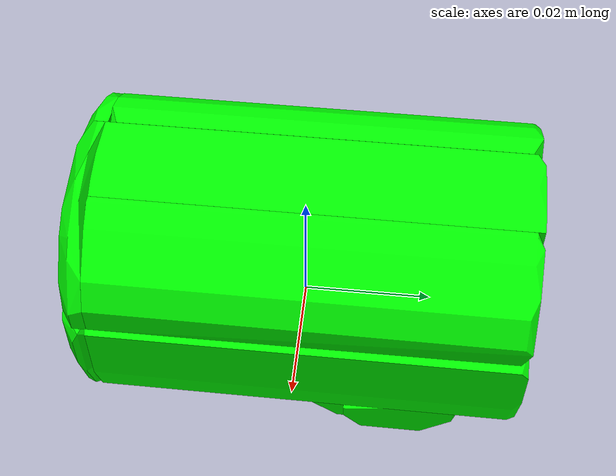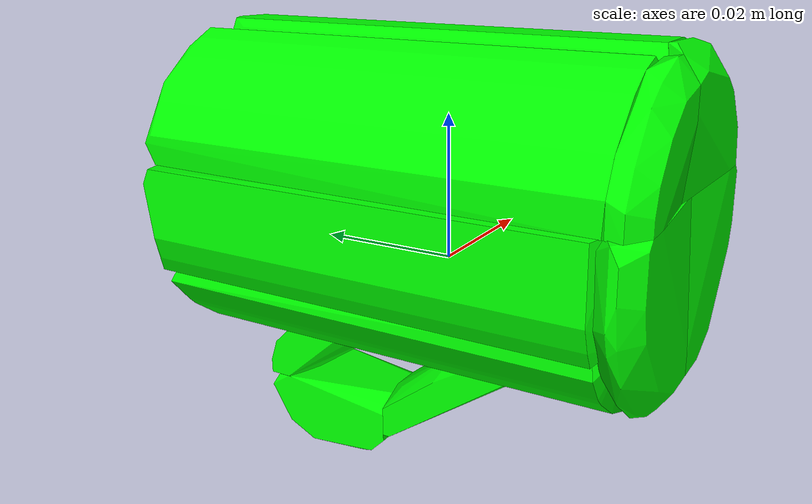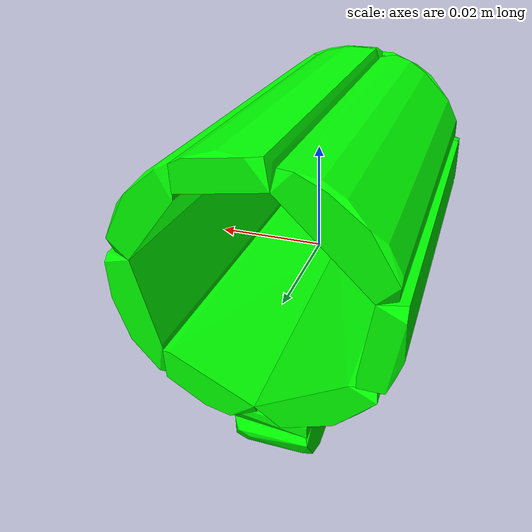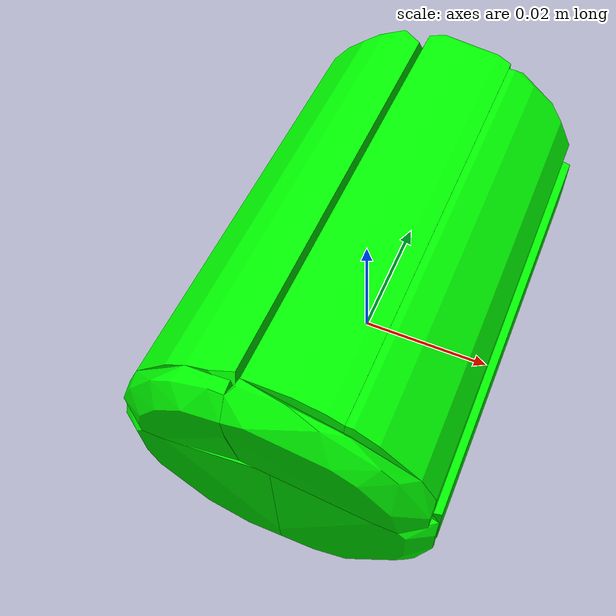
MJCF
<mujoco model="shapenet9-12">
  <asset>
    <mesh file="meshes/shapenet9-12/shapenet9-12_0.stl" name="shapenet9-12_0" scale="0.1 0.1 0.1"/>
    <mesh file="meshes/shapenet9-12/shapenet9-12_1.stl" name="shapenet9-12_1" scale="0.1 0.1 0.1"/>
    <mesh file="meshes/shapenet9-12/shapenet9-12_2.stl" name="shapenet9-12_2" scale="0.1 0.1 0.1"/>
    <mesh file="meshes/shapenet9-12/shapenet9-12_3.stl" name="shapenet9-12_3" scale="0.1 0.1 0.1"/>
    <mesh file="meshes/shapenet9-12/shapenet9-12_4.stl" name="shapenet9-12_4" scale="0.1 0.1 0.1"/>
    <mesh file="meshes/shapenet9-12/shapenet9-12_5.stl" name="shapenet9-12_5" scale="0.1 0.1 0.1"/>
    <mesh file="meshes/shapenet9-12/shapenet9-12_6.stl" name="shapenet9-12_6" scale="0.1 0.1 0.1"/>
    <mesh file="meshes/shapenet9-12/shapenet9-12_7.stl" name="shapenet9-12_7" scale="0.1 0.1 0.1"/>
    <mesh file="meshes/shapenet9-12/shapenet9-12_8.stl" name="shapenet9-12_8" scale="0.1 0.1 0.1"/>
    <mesh file="meshes/shapenet9-12/shapenet9-12_9.stl" name="shapenet9-12_9" scale="0.1 0.1 0.1"/>
    <mesh file="meshes/shapenet9-12/shapenet9-12_10.stl" name="shapenet9-12_10" scale="0.1 0.1 0.1"/>
    <mesh file="meshes/shapenet9-12/shapenet9-12_11.stl" name="shapenet9-12_11" scale="0.1 0.1 0.1"/>
    <mesh file="meshes/shapenet9-12/shapenet9-12_12.stl" name="shapenet9-12_12" scale="0.1 0.1 0.1"/>
    <mesh file="meshes/shapenet9-12/shapenet9-12_13.stl" name="shapenet9-12_13" scale="0.1 0.1 0.1"/>
  </asset>
  <worldbody>
    <body>
      <body name="collision">
        <geom pos="0 0 0" mesh="shapenet9-12_0" type="mesh" solimp="0.998 0.998 0.001" solref="0.001 1" density="100" friction="0.95 0.3 0.1" rgba="0 1 0 1" group="1" condim="4"/>
        <geom pos="0 0 0" mesh="shapenet9-12_1" type="mesh" solimp="0.998 0.998 0.001" solref="0.001 1" density="100" friction="0.95 0.3 0.1" rgba="0 1 0 1" group="1" condim="4"/>
        <geom pos="0 0 0" mesh="shapenet9-12_2" type="mesh" solimp="0.998 0.998 0.001" solref="0.001 1" density="100" friction="0.95 0.3 0.1" rgba="0 1 0 1" group="1" condim="4"/>
        <geom pos="0 0 0" mesh="shapenet9-12_3" type="mesh" solimp="0.998 0.998 0.001" solref="0.001 1" density="100" friction="0.95 0.3 0.1" rgba="0 1 0 1" group="1" condim="4"/>
        <geom pos="0 0 0" mesh="shapenet9-12_4" type="mesh" solimp="0.998 0.998 0.001" solref="0.001 1" density="100" friction="0.95 0.3 0.1" rgba="0 1 0 1" group="1" condim="4"/>
        <geom pos="0 0 0" mesh="shapenet9-12_5" type="mesh" solimp="0.998 0.998 0.001" solref="0.001 1" density="100" friction="0.95 0.3 0.1" rgba="0 1 0 1" group="1" condim="4"/>
        <geom pos="0 0 0" mesh="shapenet9-12_6" type="mesh" solimp="0.998 0.998 0.001" solref="0.001 1" density="100" friction="0.95 0.3 0.1" rgba="0 1 0 1" group="1" condim="4"/>
        <geom pos="0 0 0" mesh="shapenet9-12_7" type="mesh" solimp="0.998 0.998 0.001" solref="0.001 1" density="100" friction="0.95 0.3 0.1" rgba="0 1 0 1" group="1" condim="4"/>
        <geom pos="0 0 0" mesh="shapenet9-12_8" type="mesh" solimp="0.998 0.998 0.001" solref="0.001 1" density="100" friction="0.95 0.3 0.1" rgba="0 1 0 1" group="1" condim="4"/>
        <geom pos="0 0 0" mesh="shapenet9-12_9" type="mesh" solimp="0.998 0.998 0.001" solref="0.001 1" density="100" friction="0.95 0.3 0.1" rgba="0 1 0 1" group="1" condim="4"/>
        <geom pos="0 0 0" mesh="shapenet9-12_10" type="mesh" solimp="0.998 0.998 0.001" solref="0.001 1" density="100" friction="0.95 0.3 0.1" rgba="0 1 0 1" group="1" condim="4"/>
        <geom pos="0 0 0" mesh="shapenet9-12_11" type="mesh" solimp="0.998 0.998 0.001" solref="0.001 1" density="100" friction="0.95 0.3 0.1" rgba="0 1 0 1" group="1" condim="4"/>
        <geom pos="0 0 0" mesh="shapenet9-12_12" type="mesh" solimp="0.998 0.998 0.001" solref="0.001 1" density="100" friction="0.95 0.3 0.1" rgba="0 1 0 1" group="1" condim="4"/>
        <geom pos="0 0 0" mesh="shapenet9-12_13" type="mesh" solimp="0.998 0.998 0.001" solref="0.001 1" density="100" friction="0.95 0.3 0.1" rgba="0 1 0 1" group="1" condim="4"/>
      </body>
      <body name="visual">
        <geom pos="0 0 0" mesh="shapenet9-12_0" type="mesh" rgba="0 1 0 1" conaffinity="0" contype="0" group="0" mass="0.0001"/>
        <geom pos="0 0 0" mesh="shapenet9-12_1" type="mesh" rgba="0 1 0 1" conaffinity="0" contype="0" group="0" mass="0.0001"/>
        <geom pos="0 0 0" mesh="shapenet9-12_2" type="mesh" rgba="0 1 0 1" conaffinity="0" contype="0" group="0" mass="0.0001"/>
        <geom pos="0 0 0" mesh="shapenet9-12_3" type="mesh" rgba="0 1 0 1" conaffinity="0" contype="0" group="0" mass="0.0001"/>
        <geom pos="0 0 0" mesh="shapenet9-12_4" type="mesh" rgba="0 1 0 1" conaffinity="0" contype="0" group="0" mass="0.0001"/>
        <geom pos="0 0 0" mesh="shapenet9-12_5" type="mesh" rgba="0 1 0 1" conaffinity="0" contype="0" group="0" mass="0.0001"/>
        <geom pos="0 0 0" mesh="shapenet9-12_6" type="mesh" rgba="0 1 0 1" conaffinity="0" contype="0" group="0" mass="0.0001"/>
        <geom pos="0 0 0" mesh="shapenet9-12_7" type="mesh" rgba="0 1 0 1" conaffinity="0" contype="0" group="0" mass="0.0001"/>
        <geom pos="0 0 0" mesh="shapenet9-12_8" type="mesh" rgba="0 1 0 1" conaffinity="0" contype="0" group="0" mass="0.0001"/>
        <geom pos="0 0 0" mesh="shapenet9-12_9" type="mesh" rgba="0 1 0 1" conaffinity="0" contype="0" group="0" mass="0.0001"/>
        <geom pos="0 0 0" mesh="shapenet9-12_10" type="mesh" rgba="0 1 0 1" conaffinity="0" contype="0" group="0" mass="0.0001"/>
        <geom pos="0 0 0" mesh="shapenet9-12_11" type="mesh" rgba="0 1 0 1" conaffinity="0" contype="0" group="0" mass="0.0001"/>
        <geom pos="0 0 0" mesh="shapenet9-12_12" type="mesh" rgba="0 1 0 1" conaffinity="0" contype="0" group="0" mass="0.0001"/>
        <geom pos="0 0 0" mesh="shapenet9-12_13" type="mesh" rgba="0 1 0 1" conaffinity="0" contype="0" group="0" mass="0.0001"/>
      </body>
      <site rgba="0 0 0 0" size="0.005" pos="0 0 -0.06" name="bottom_site"/>
      <site rgba="0 0 0 0" size="0.005" pos="0 0 0.04" name="top_site"/>
      <site rgba="0 0 0 0" size="0.005" pos="0.025 0.025 0" name="horizontal_radius_site"/>
    </body>
  </worldbody>
</mujoco>
